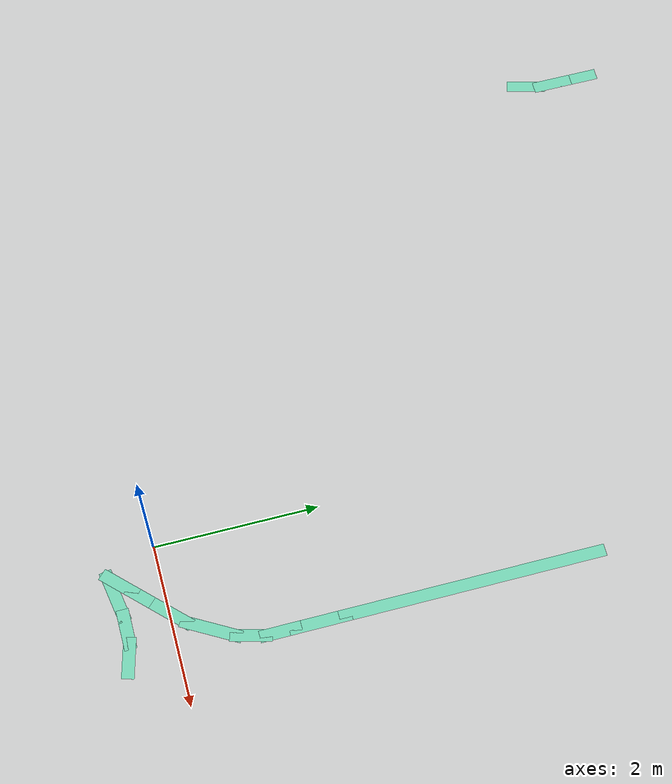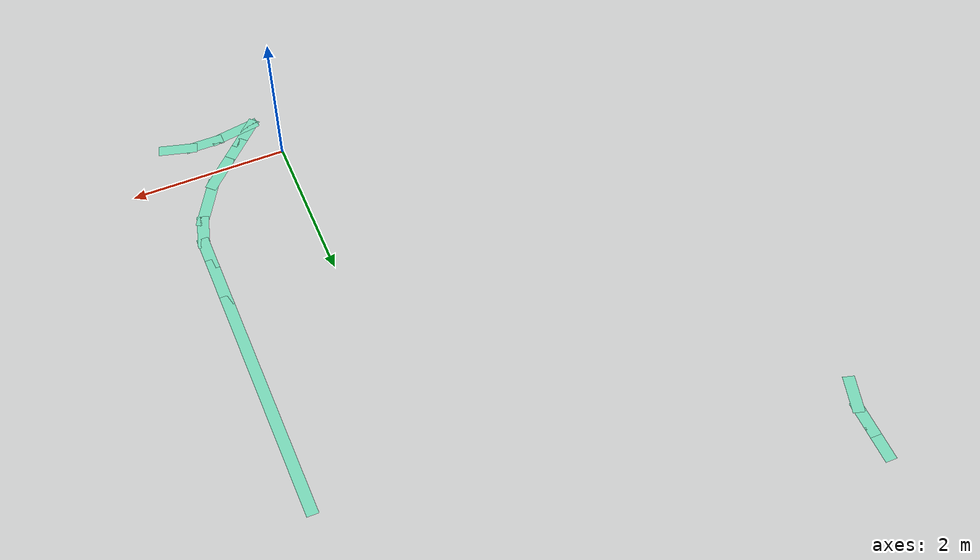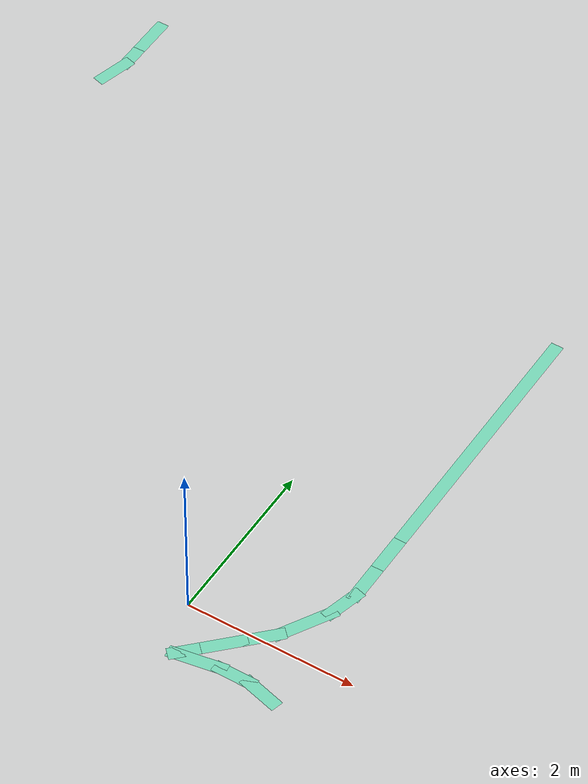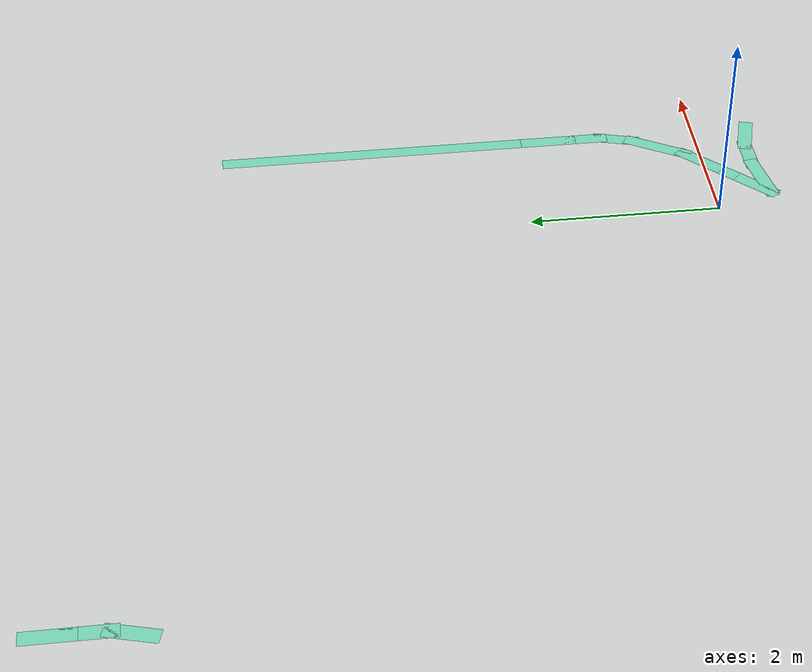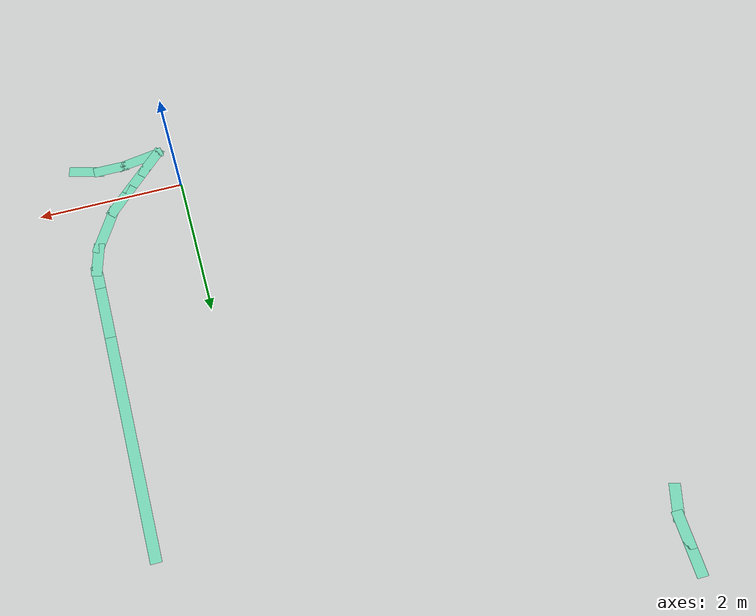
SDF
<sdf version="1.6">
 <model name="pomdp_path">
  <pose>0.697999 -0.110454 0 0 -0 0</pose>
  <link name="Wall_110">
   <collision name="Wall_110_Collision">
    <geometry><box><size>0.5 0.15 0</size></box></geometry>
    <pose>0 0 0.0001 0 -0 0</pose>
   </collision>
   <visual name="Wall_110_Visual">
    <pose>0 0 0.0001 0 -0 0</pose>
    <geometry><box><size>0.5 0.15 0</size></box></geometry>
    <material>
     <script><uri>file://media/materials/scripts/gazebo.material</uri><name>Gazebo/Grey</name></script>
     <ambient>0.435294 0.796078 0.67451 1</ambient>
    </material>
    <meta><layer>0</layer></meta>
   </visual>
   <pose>-5.68402 6.91549 0 0 -0 -1.5708</pose>
  </link>
  <link name="Wall_112">
   <collision name="Wall_112_Collision">
    <geometry><box><size>0.5 0.15 0</size></box></geometry>
    <pose>0 0 0.0001 0 -0 0</pose>
   </collision>
   <visual name="Wall_112_Visual">
    <pose>0 0 0.0001 0 -0 0</pose>
    <geometry><box><size>0.5 0.15 0</size></box></geometry>
    <material>
     <script><uri>file://media/materials/scripts/gazebo.material</uri><name>Gazebo/Grey</name></script>
     <ambient>0.435294 0.796078 0.67451 1</ambient>
    </material>
    <meta><layer>0</layer></meta>
   </visual>
   <pose>-5.68402 6.56549 0 0 -0 -1.5708</pose>
  </link>
  <link name="Wall_113">
   <collision name="Wall_113_Collision">
    <geometry><box><size>0.5 0.15 0</size></box></geometry>
    <pose>0 0 0.0001 0 -0 0</pose>
   </collision>
   <visual name="Wall_113_Visual">
    <pose>0 0 0.0001 0 -0 0</pose>
    <geometry><box><size>0.5 0.15 0</size></box></geometry>
    <material>
     <script><uri>file://media/materials/scripts/gazebo.material</uri><name>Gazebo/Grey</name></script>
     <ambient>0.435294 0.796078 0.67451 1</ambient>
    </material>
    <meta><layer>0</layer></meta>
   </visual>
   <pose>-5.72931 6.22145 0 0 -0 -1.8326</pose>
  </link>
  <link name="Wall_208">
   <collision name="Wall_208_Collision">
    <geometry><box><size>0.75 0.15 0</size></box></geometry>
    <pose>0 0 0.0001 0 -0 0</pose>
   </collision>
   <visual name="Wall_208_Visual">
    <pose>0 0 0.0001 0 -0 0</pose>
    <geometry><box><size>0.75 0.15 0</size></box></geometry>
    <material>
     <script><uri>file://media/materials/scripts/gazebo.material</uri><name>Gazebo/Grey</name></script>
     <ambient>0.435294 0.796078 0.67451 1</ambient>
    </material>
    <meta><layer>0</layer></meta>
   </visual>
   <pose>0.45352 0.53948 0 0 -0 1.0472</pose>
  </link>
  <link name="Wall_209">
   <collision name="Wall_209_Collision">
    <geometry><box><size>0.5 0.15 0</size></box></geometry>
    <pose>0 0 0.0001 0 -0 0</pose>
   </collision>
   <visual name="Wall_209_Visual">
    <pose>0 0 0.0001 0 -0 0</pose>
    <geometry><box><size>0.5 0.15 0</size></box></geometry>
    <material>
     <script><uri>file://media/materials/scripts/gazebo.material</uri><name>Gazebo/Grey</name></script>
     <ambient>0.435294 0.796078 0.67451 1</ambient>
    </material>
    <meta><layer>0</layer></meta>
   </visual>
   <pose>0.648813 0.968324 0 0 -0 1.309</pose>
  </link>
  <link name="Wall_210">
   <collision name="Wall_210_Collision">
    <geometry><box><size>0.5 0.15 0</size></box></geometry>
    <pose>0 0 0.0001 0 -0 0</pose>
   </collision>
   <visual name="Wall_210_Visual">
    <pose>0 0 0.0001 0 -0 0</pose>
    <geometry><box><size>0.5 0.15 0</size></box></geometry>
    <material>
     <script><uri>file://media/materials/scripts/gazebo.material</uri><name>Gazebo/Grey</name></script>
     <ambient>0.435294 0.796078 0.67451 1</ambient>
    </material>
    <meta><layer>0</layer></meta>
   </visual>
   <pose>0.694107 1.31236 0 0 -0 1.5708</pose>
  </link>
  <link name="Wall_211">
   <collision name="Wall_211_Collision">
    <geometry><box><size>0.75 0.15 0</size></box></geometry>
    <pose>0 0 0.0001 0 -0 0</pose>
   </collision>
   <visual name="Wall_211_Visual">
    <pose>0 0 0.0001 0 -0 0</pose>
    <geometry><box><size>0.75 0.15 0</size></box></geometry>
    <material>
     <script><uri>file://media/materials/scripts/gazebo.material</uri><name>Gazebo/Grey</name></script>
     <ambient>0.435294 0.796078 0.67451 1</ambient>
    </material>
    <meta><layer>0</layer></meta>
   </visual>
   <pose>0.694107 1.78736 0 0 -0 1.5708</pose>
  </link>
  <link name="Wall_213">
   <collision name="Wall_213_Collision">
    <geometry><box><size>3.25 0.15 0</size></box></geometry>
    <pose>0 0 0.0001 0 -0 0</pose>
   </collision>
   <visual name="Wall_213_Visual">
    <pose>0 0 0.0001 0 -0 0</pose>
    <geometry><box><size>3.25 0.15 0</size></box></geometry>
    <material>
     <script><uri>file://media/materials/scripts/gazebo.material</uri><name>Gazebo/Grey</name></script>
     <ambient>0.435294 0.796078 0.67451 1</ambient>
    </material>
    <meta><layer>0</layer></meta>
   </visual>
   <pose>0.694107 3.63736 0 0 -0 1.5708</pose>
  </link>
  <link name="Wall_230">
   <collision name="Wall_230_Collision">
    <geometry><box><size>0.5 0.15 0</size></box></geometry>
    <pose>0 0 0.0001 0 -0 0</pose>
   </collision>
   <visual name="Wall_230_Visual">
    <pose>0 0 0.0001 0 -0 0</pose>
    <geometry><box><size>0.5 0.15 0</size></box></geometry>
    <material>
     <script><uri>file://media/materials/scripts/gazebo.material</uri><name>Gazebo/Grey</name></script>
     <ambient>0.435294 0.796078 0.67451 1</ambient>
    </material>
    <meta><layer>0</layer></meta>
   </visual>
   <pose>0.209547 -0.413565 0 0 -0 0</pose>
  </link>
  <link name="Wall_231">
   <collision name="Wall_231_Collision">
    <geometry><box><size>0.5 0.15 0</size></box></geometry>
    <pose>0 0 0.0001 0 -0 0</pose>
   </collision>
   <visual name="Wall_231_Visual">
    <pose>0 0 0.0001 0 -0 0</pose>
    <geometry><box><size>0.5 0.15 0</size></box></geometry>
    <material>
     <script><uri>file://media/materials/scripts/gazebo.material</uri><name>Gazebo/Grey</name></script>
     <ambient>0.435294 0.796078 0.67451 1</ambient>
    </material>
    <meta><layer>0</layer></meta>
   </visual>
   <pose>0.553584 -0.458858 0 0 -0 -0.261799</pose>
  </link>
  <link name="Wall_256">
   <collision name="Wall_256_Collision">
    <geometry><box><size>0.5 0.15 0</size></box></geometry>
    <pose>0 0 0.0001 0 -0 0</pose>
   </collision>
   <visual name="Wall_256_Visual">
    <pose>0 0 0.0001 0 -0 0</pose>
    <geometry><box><size>0.5 0.15 0</size></box></geometry>
    <material>
     <script><uri>file://media/materials/scripts/gazebo.material</uri><name>Gazebo/Grey</name></script>
     <ambient>0.435294 0.796078 0.67451 1</ambient>
    </material>
    <meta><layer>0</layer></meta>
   </visual>
   <pose>-0.350554 -0.374402 0 0 -0 0.785398</pose>
  </link>
  <link name="Wall_257">
   <collision name="Wall_257_Collision">
    <geometry><box><size>0.5 0.15 0</size></box></geometry>
    <pose>0 0 0.0001 0 -0 0</pose>
   </collision>
   <visual name="Wall_257_Visual">
    <pose>0 0 0.0001 0 -0 0</pose>
    <geometry><box><size>0.5 0.15 0</size></box></geometry>
    <material>
     <script><uri>file://media/materials/scripts/gazebo.material</uri><name>Gazebo/Grey</name></script>
     <ambient>0.435294 0.796078 0.67451 1</ambient>
    </material>
    <meta><layer>0</layer></meta>
   </visual>
   <pose>-0.103066 -0.126915 0 0 -0 0.785398</pose>
  </link>
  <link name="Wall_258">
   <collision name="Wall_258_Collision">
    <geometry><box><size>0.55 0.15 0</size></box></geometry>
    <pose>0 0 0.0001 0 -0 0</pose>
   </collision>
   <visual name="Wall_258_Visual">
    <pose>0 0 0.0001 0 -0 0</pose>
    <geometry><box><size>0.55 0.15 0</size></box></geometry>
    <material>
     <script><uri>file://media/materials/scripts/gazebo.material</uri><name>Gazebo/Grey</name></script>
     <ambient>0.435294 0.796078 0.67451 1</ambient>
    </material>
    <meta><layer>0</layer></meta>
   </visual>
   <pose>0.162099 0.138251 0 0 -0 0.785398</pose>
  </link>
  <link name="Wall_260">
   <collision name="Wall_260_Collision">
    <geometry><box><size>0.665826 0.15 0</size></box></geometry>
    <pose>0 0 0.0001 0 -0 0</pose>
   </collision>
   <visual name="Wall_260_Visual">
    <pose>0 0 0.0001 0 -0 0</pose>
    <geometry><box><size>0.665826 0.15 0</size></box></geometry>
    <material>
     <script><uri>file://media/materials/scripts/gazebo.material</uri><name>Gazebo/Grey</name></script>
     <ambient>0.435294 0.796078 0.67451 1</ambient>
    </material>
    <meta><layer>0</layer></meta>
   </visual>
   <pose>-0.219875 -0.455855 0 0 -0 -2.97688</pose>
  </link>
  <static>1</static>
 </model>
</sdf>
